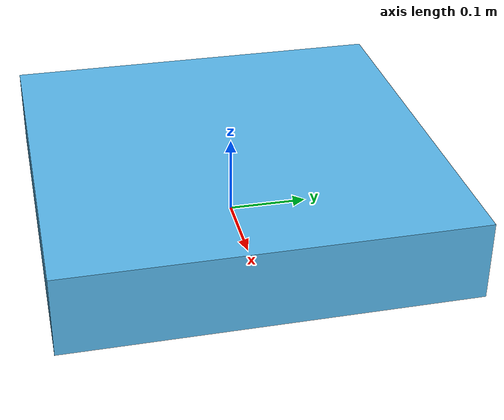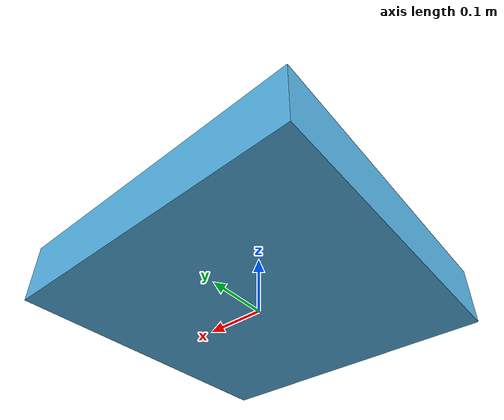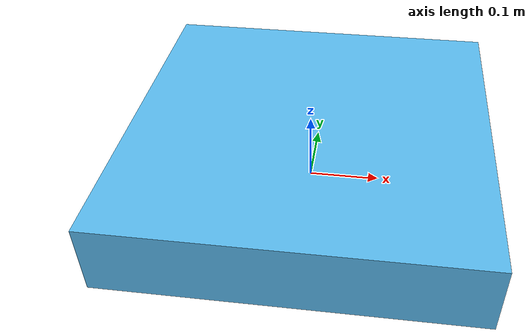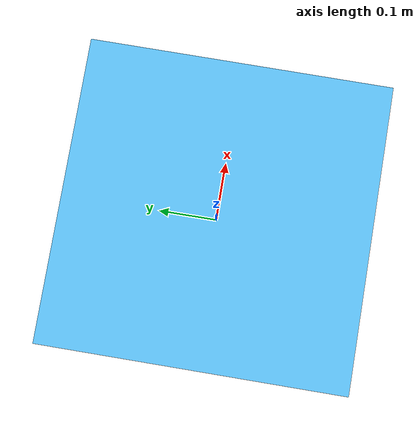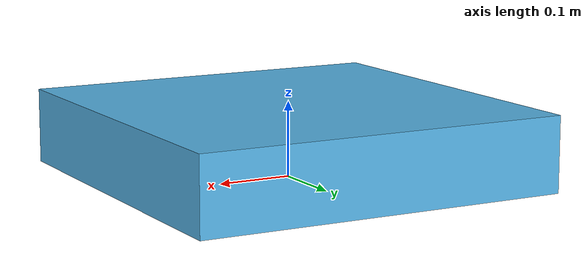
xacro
<?xml version="1.0"?>
<robot xmlns:xacro="http://www.ros.org/wiki/xacro" name="example">

  <xacro:include filename="$(find sensors)/sensor_macro.xacro"/>

  <xacro:arg name="hc_sr04"         default="false"/>
  <xacro:arg name="rs_d435"         default="false"/>
  <xacro:arg name="rplidar_a3"      default="false"/>
  <xacro:arg name="velodyne_vlp16"  default="false"/>

  <xacro:property name="hc_sr04"          value="$(arg hc_sr04)"/>
  <xacro:property name="rs_d435"          value="$(arg rs_d435)"/>
  <xacro:property name="rplidar_a3"       value="$(arg rplidar_a3)"/>
  <xacro:property name="velodyne_vlp16"   value="$(arg velodyne_vlp16)"/>

  <!-- Base Footprint -->
  <link name="base_footprint" />

  <!-- Base Link -->
  <joint name="footprint" type="fixed" >
   <parent link="base_footprint" />
    <child link="base_link" />
    <origin xyz="0 0 0.05" rpy="0 0 0" />
  </joint>
  <link name="base_link" >
    <visual>
      <geometry>
        <box size="0.5 0.5 0.1" />
      </geometry>
    </visual>
    <collision>
      <geometry>
        <box size="0.5 0.5 0.1" />
      </geometry>
    </collision>
    <inertial>
      <origin xyz="0 0 0"/>
      <mass value="10"/>
      <inertia ixx="3.0" ixy="0.0" ixz="0.0"
               iyy="3.0" iyz="0.0"
               izz="3.0" />
    </inertial>
  </link>

  <xacro:if value="${hc_sr04}">
    <xacro:sensor_ultrasonic name="ultrasound"
                             parent="base_link"
                             x="0" y="0" z="0.2"
                             roll="0" pitch="0" yaw="0"
                             topic_name="ultrasound"
                             visualize="false"
    />
  </xacro:if>

  <xacro:if value="${rs_d435}">
    <xacro:sensor_rsD435 prefix="d435"
                         parent="base_link"
                         x="0" y="0" z="0.3"
                         roll="0" pitch="0" yaw="0"
                         visualize="false"
    />
  </xacro:if>

  <xacro:if value="${rplidar_a3}">
    <xacro:sensor_rplidarA3 name="rplidar_a3"
                            parent="base_link"
                            x="0" y="0" z="0.1"
                            roll="0" pitch="0" yaw="0"
                            topic_name="rplidar_a3_scan"
                            min_angle="-1.0472" max_angle="1.0472"
                            visualize="false"
                            gpu="false"
    />
  </xacro:if>

  <xacro:if value="${velodyne_vlp16}">
    <xacro:sensor_velodyneVLP16 name="vlp16"
                                parent="base_link"
                                x="0" y="0" z="0.5"
                                roll="0" pitch="0" yaw="0"
                                topic_name="vlp16_points"
    />
  </xacro:if>

</robot>
